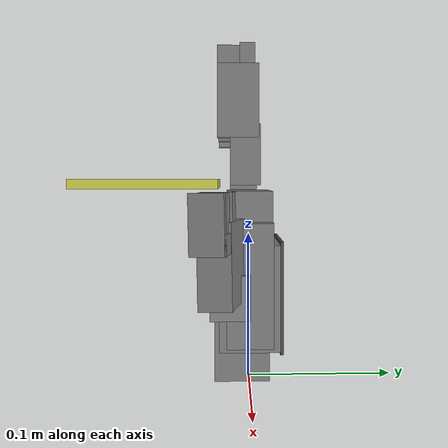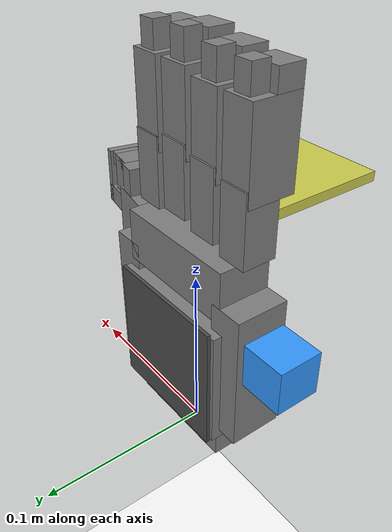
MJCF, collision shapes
<mujoco model="v2_scene_grasp">
  <size nconmax="80"/>
  <include file="right_hand_v2_vertical.xml"/>
  <include file="small_cube.xml"/>

  <!-- V2 手更长 (指尖世界 X ≈ -0.22)，调整视角中心 -->
  <statistic center="-0.130 0 0.005" extent="0.5" meansize="0.01"/>

  <visual>
    <headlight diffuse=".8 .8 .8" ambient=".2 .2 .2" specular="1 1 1"/>
    <rgba force="1 0 0 1"/>
    <global azimuth="120" elevation="-20"/>
  </visual>

  <asset>
    <texture type="skybox" builtin="gradient" rgb1="1 1 1" rgb2="1 1 1" width="800" height="800"/>
    <texture type="2d" name="groundplane" builtin="checker" mark="edge" rgb1="1 1 1" rgb2="1 1 1" markrgb="0 0 0" width="300" height="300"/>
    <material name="groundplane" texture="groundplane" texuniform="true" texrepeat="5 5" reflectance="0"/>
  </asset>

  <worldbody>
    <camera name="side" pos="-0.314 -0.181 0.249" xyaxes="0.5 -0.866 0 0.366 0.211 0.906"/>
    <camera name="palm" pos="-0.376 0.0 0.217" xyaxes="0 -1 0 0.342 0 0.940"/>
    <geom name="floor" pos="0 0 -0.25" size="0 0 0.01" type="plane" material="groundplane" contype="2" conaffinity="2"/>
    <!-- 支撑台: cube_z(0.1503) - cube_half(0.0125) - support_half(0.003) = 0.1348
         支撑台只与 cube 碰撞；不与手指/手掌碰撞，避免从初始手形中顶开手指。 -->
    <body name="cube_support" mocap="true" pos="0.025 -0.065 0.1348">
      <geom name="cube_support_geom" type="box" size="0.045 0.045 0.003" rgba="0.8 0.8 0.3 0.3" contype="4" conaffinity="0"/>
    </body>
  </worldbody>

  <sensor>
    <framepos name="cube_position" objtype="body" objname="cube"/>
    <framequat name="cube_orientation" objtype="body" objname="cube"/>
    <framelinvel name="cube_linvel" objtype="body" objname="cube"/>
    <frameangvel name="cube_angvel" objtype="body" objname="cube"/>

    <framepos name="palm_position" objtype="site" objname="grasp_site"/>
    <framepos name="th_tip_position" objtype="site" objname="th_tip" reftype="site" refname="grasp_site"/>
    <framepos name="if_tip_position" objtype="site" objname="if_tip" reftype="site" refname="grasp_site"/>
    <framepos name="mf_tip_position" objtype="site" objname="mf_tip" reftype="site" refname="grasp_site"/>
    <framepos name="rf_tip_position" objtype="site" objname="rf_tip" reftype="site" refname="grasp_site"/>
    <framepos name="pf_tip_position" objtype="site" objname="pf_tip" reftype="site" refname="grasp_site"/>
  </sensor>

  <keyframe>
    <key name="home" qpos="0.55 0.50875 0.55 0.50875
    1.3963 1.2916 1.3963 1.2916
    1.38 0.2208 0.0
    0.025 -0.065 0.1503 1 0 0 0" ctrl="
    1.38
    0.0
    0.55
    0.55
    1.4
    1.4" mpos="0.025 -0.065 0.1348" mquat="1 0 0 0"/>
  </keyframe>
</mujoco>

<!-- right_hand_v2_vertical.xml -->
<mujoco model="Lingxi_Hand_V2_Right">
  <compiler angle="radian" meshdir="/home/ll/SRTP/Aero-Hand/handinformation/URDF/右/qbr/meshes/"/>

  <option timestep="0.01" integrator="Euler" iterations="12" ls_iterations="16">
    <flag eulerdamp="disable"/>
  </option>

  <custom>
    <numeric data="80" name="max_contact_points"/>
    <numeric data="50" name="max_geom_pairs"/>
  </custom>

  <asset>
    <material name="black" rgba="0.2 0.2 0.2 1"/>
    <material name="gray" rgba="0.5 0.5 0.5 1"/>
    <material name="white" rgba="0.529 0.549 0.549 1"/>
    <material name="rubber" rgba="0.3 0.3 0.3 1"/>

    <!-- V2 STL 网格 (v2_base_link.STL avoids name collision with V1 menagerie assets) -->
    <mesh name="v2_palm" file="v2_base_link.STL"/>
    <mesh name="v2_thumb_base" file="link1.STL"/>
    <mesh name="v2_thumb_mid" file="link2.STL"/>
    <mesh name="v2_thumb_tip" file="link3.STL"/>
    <mesh name="v2_index_proximal" file="link4.STL"/>
    <mesh name="v2_index_distal" file="link5.STL"/>
    <mesh name="v2_middle_proximal" file="link6.STL"/>
    <mesh name="v2_middle_distal" file="link7.STL"/>
    <mesh name="v2_ring_proximal" file="link8.STL"/>
    <mesh name="v2_ring_distal" file="link9.STL"/>
    <mesh name="v2_pinky_proximal" file="link10.STL"/>
    <mesh name="v2_pinky_distal" file="link11.STL"/>
  </asset>

  <default>
    <default class="v2_hand">
      <!-- 碰撞默认：friction=1.5, 柔性接触 -->
      <geom group="3" friction="1.5" solref="0.01 1.2" solimp="0.95 0.995 0.0005"/>
      <!-- 默认 site 隐藏到 group 4，viewer 中不显示触觉传感器小球 -->
      <site group="4"/>
      <default class="visual">
        <geom group="2" type="mesh" contype="0" conaffinity="0" density="0" material="white"/>
      </default>

      <!-- 关节物理默认 -->
      <!-- armature = rotor_inertia * gear_ratio^2 = 0.371e-7 * 205^2 -->
      <joint damping="0.02" armature="0.001559127" frictionloss="0.02"/>
      <position kp="3.0"/>

      <!-- ========== 关节范围 (V2 硬件实测) ========== -->
      <!-- MCP (根→近端): 80° = 1.3963 rad -->
      <default class="mcp">
        <joint range="0 1.3963" damping="0.1"/>
        <position ctrlrange="0 1.40"/>
      </default>
      <!-- PIP (被动耦合): 74° = 1.2915 rad -->
      <default class="pip">
        <joint range="0 1.2915" damping="0.05"/>
      </default>
      <!-- 拇指 CMC 外展: 79° = 1.3788 rad -->
      <default class="thumb_cmc">
        <joint range="0 1.3788" damping="0.1"/>
        <position ctrlrange="0 1.38"/>
      </default>
      <!-- 拇指 CMC 弯曲 (被动): 30° = 0.5236 rad -->
      <default class="thumb_flex">
        <joint range="0 0.5236" damping="0.05"/>
      </default>
      <!-- 拇指 MCP/IP: 45° = 0.7854 rad -->
      <default class="thumb_mcp">
        <joint range="0 0.7854" damping="0.05"/>
        <position ctrlrange="0 0.79"/>
      </default>
    </default>
  </default>

  <!-- 自碰撞排除 -->
  <contact>
    <exclude body1="palm" body2="right_index_proximal"/>
    <exclude body1="palm" body2="right_middle_proximal"/>
    <exclude body1="palm" body2="right_ring_proximal"/>
    <exclude body1="palm" body2="right_pinky_proximal"/>
    <exclude body1="palm" body2="right_thumb_base"/>
    <exclude body1="palm" body2="right_thumb_mid"/>
    <exclude body1="palm" body2="right_ring_distal"/>
    <exclude body1="palm" body2="right_pinky_distal"/>
    <exclude body1="v2_mount" body2="right_index_proximal"/>
    <exclude body1="v2_mount" body2="right_middle_proximal"/>
    <exclude body1="v2_mount" body2="right_ring_proximal"/>
    <exclude body1="v2_mount" body2="right_pinky_proximal"/>
    <exclude body1="v2_mount" body2="right_thumb_base"/>
    <exclude body1="right_index_proximal" body2="right_index_distal"/>
    <exclude body1="right_middle_proximal" body2="right_middle_distal"/>
    <exclude body1="right_ring_proximal" body2="right_ring_distal"/>
    <exclude body1="right_pinky_proximal" body2="right_pinky_distal"/>
    <exclude body1="right_thumb_base" body2="right_thumb_mid"/>
    <exclude body1="right_thumb_mid" body2="right_thumb_tip"/>
    <!-- 相邻手指互排除 (碰撞盒放大后避免不必要碰撞对) -->
    <exclude body1="right_index_proximal" body2="right_middle_proximal"/>
    <exclude body1="right_index_distal" body2="right_middle_distal"/>
    <exclude body1="right_middle_proximal" body2="right_ring_proximal"/>
    <exclude body1="right_middle_distal" body2="right_ring_distal"/>
    <exclude body1="right_ring_proximal" body2="right_pinky_proximal"/>
    <exclude body1="right_ring_distal" body2="right_pinky_distal"/>
    <exclude body1="right_index_proximal" body2="right_middle_distal"/>
    <exclude body1="right_middle_proximal" body2="right_ring_distal"/>
    <exclude body1="right_ring_proximal" body2="right_pinky_distal"/>
    <exclude body1="right_middle_proximal" body2="right_index_distal"/>
    <exclude body1="right_ring_proximal" body2="right_middle_distal"/>
    <exclude body1="right_pinky_proximal" body2="right_ring_distal"/>
  </contact>

  <worldbody>
    <!-- 挂载体：URDF→世界坐标旋转
         euler="1.5708 0 1.5708" = Rx(90°)*Rz(90°)
         URDF X(侧向)→世界 Z, URDF Y(手指)→世界 -X, URDF Z(掌深)→世界 -Y -->
    <body name="v2_mount" pos="0 0 0" euler="1.5708 0 0" childclass="v2_hand">
      <body name="palm" pos="0 0 0">
        <!-- 视觉: V2 手掌网格 -->
        <geom type="mesh" mesh="v2_palm" class="visual"/>

        <!-- 手掌碰撞几何 (96.2×94.9×46.2mm 外壳简化) -->
        <geom name="palm_col_main" type="box" size="0.040 0.035 0.020" pos="0 0.060 0"/>
        <geom name="palm_col_top" type="box" size="0.038 0.015 0.015" pos="0 0.115 0"/>
        <geom name="palm_col_bot" type="box" size="0.035 0.020 0.018" pos="0 0.025 0.005"/>
        <geom name="palm_col_left" type="box" size="0.010 0.040 0.015" pos="0.042 0.070 0"/>
        <geom name="palm_col_right" type="box" size="0.010 0.040 0.015" pos="-0.042 0.070 0"/>
        <!-- 掌心软胶碰撞 (76.27×73.5×1mm TPE，高摩擦) -->
        <geom name="palm_rubber" type="box" size="0.038 0.037 0.001" pos="0 0.060 -0.021"
              friction="2.0 0.05 0.0002" material="rubber"/>

        <!-- 抓取参考位点 (掌面中心附近) -->
        <site name="grasp_site" pos="0 0.085 -0.020" group="4"/>

        <!-- ==================== 食指 INDEX ==================== -->
        <!-- 从 URDF j4: xyz="0.034276 0.1374 0.001" -->
        <body name="right_index_proximal" pos="0.034276 0.1374 0.001">
          <inertial pos="-0.003657 0.0162 0.000274" mass="0.0686"
                    diaginertia="7.49e-06 7.33e-06 2.82e-06"/>
          <joint name="right_index_mcp" axis="1 0 0" class="mcp"/>
          <geom type="mesh" mesh="v2_index_proximal" class="visual"/>
          <geom name="if_prox_col" type="box" size="0.0086 0.0196 0.0097" pos="-0.0037 0.0162 0.0019"/>

          <!-- 从 URDF j5: xyz="0.00084336 0.031988 -0.0026473" -->
          <body name="right_index_distal" pos="0.00084336 0.031988 -0.0026473">
            <inertial pos="-0.00450 0.0246 0.00927" mass="0.0755"
                      diaginertia="1.58e-05 1.57e-05 2.47e-06"/>
            <joint name="right_index_pip" axis="1 0 0" class="pip"/>
            <geom type="mesh" mesh="v2_index_distal" class="visual"/>
            <geom name="if_dist_col" type="box" size="0.0089 0.0235 0.0134" pos="-0.0045 0.0188 0.0091"/>
            <geom name="if_tip_col" type="box" size="0.005 0.008 0.005" pos="-0.004 0.048 0.003"/>
            <geom name="if_tip_back_col" type="box" size="0.0089 0.0065 0.0072" pos="-0.0045 0.0470 0.0153"/>
            <site name="if_tip" pos="-0.004 0.052 0.005" group="4"/>
            <!-- 食指 4x4 触觉阵列 (16 taxels) -->
            <site name="if_tip_t00" pos="-0.007 0.042 0.005" size="0.003"/>
            <site name="if_tip_t01" pos="-0.005 0.042 0.005" size="0.003"/>
            <site name="if_tip_t02" pos="-0.003 0.042 0.005" size="0.003"/>
            <site name="if_tip_t03" pos="-0.001 0.042 0.005" size="0.003"/>
            <site name="if_tip_t04" pos="-0.007 0.045 0.005" size="0.003"/>
            <site name="if_tip_t05" pos="-0.005 0.045 0.005" size="0.003"/>
            <site name="if_tip_t06" pos="-0.003 0.045 0.005" size="0.003"/>
            <site name="if_tip_t07" pos="-0.001 0.045 0.005" size="0.003"/>
            <site name="if_tip_t08" pos="-0.007 0.048 0.005" size="0.003"/>
            <site name="if_tip_t09" pos="-0.005 0.048 0.005" size="0.003"/>
            <site name="if_tip_t10" pos="-0.003 0.048 0.005" size="0.003"/>
            <site name="if_tip_t11" pos="-0.001 0.048 0.005" size="0.003"/>
            <site name="if_tip_t12" pos="-0.007 0.051 0.005" size="0.003"/>
            <site name="if_tip_t13" pos="-0.005 0.051 0.005" size="0.003"/>
            <site name="if_tip_t14" pos="-0.003 0.051 0.005" size="0.003"/>
            <site name="if_tip_t15" pos="-0.001 0.051 0.005" size="0.003"/>
          </body>
        </body>

        <!-- ==================== 中指 MIDDLE ==================== -->
        <!-- 从 URDF j6: xyz="0.012276 0.14055 0.001" -->
        <body name="right_middle_proximal" pos="0.012276 0.14055 0.001">
          <inertial pos="-0.003657 0.0162 0.000274" mass="0.0686"
                    diaginertia="7.49e-06 7.33e-06 2.82e-06"/>
          <joint name="right_middle_mcp" axis="1 0 0" class="mcp"/>
          <geom type="mesh" mesh="v2_middle_proximal" class="visual"/>
          <geom name="mf_prox_col" type="box" size="0.0086 0.0196 0.0097" pos="-0.0037 0.0162 0.0019"/>

          <!-- 从 URDF j7: xyz="0 0.02968 -0.0024563" -->
          <body name="right_middle_distal" pos="0 0.02968 -0.0024563">
            <inertial pos="-0.00366 0.0269 0.00908" mass="0.0755"
                      diaginertia="1.58e-05 1.57e-05 2.47e-06"/>
            <joint name="right_middle_pip" axis="1 0 0" class="pip"/>
            <geom type="mesh" mesh="v2_middle_distal" class="visual"/>
            <geom name="mf_dist_col" type="box" size="0.0089 0.0220 0.0133" pos="-0.0037 0.0195 0.0090"/>
            <geom name="mf_tip_col" type="box" size="0.005 0.008 0.005" pos="-0.004 0.048 0.003"/>
            <geom name="mf_tip_back_col" type="box" size="0.0089 0.0070 0.0072" pos="-0.0037 0.0480 0.0152"/>
            <site name="mf_tip" pos="-0.004 0.052 0.005" group="4"/>
            <!-- 中指 4x4 触觉阵列 -->
            <site name="mf_tip_t00" pos="-0.007 0.042 0.005" size="0.003"/>
            <site name="mf_tip_t01" pos="-0.005 0.042 0.005" size="0.003"/>
            <site name="mf_tip_t02" pos="-0.003 0.042 0.005" size="0.003"/>
            <site name="mf_tip_t03" pos="-0.001 0.042 0.005" size="0.003"/>
            <site name="mf_tip_t04" pos="-0.007 0.045 0.005" size="0.003"/>
            <site name="mf_tip_t05" pos="-0.005 0.045 0.005" size="0.003"/>
            <site name="mf_tip_t06" pos="-0.003 0.045 0.005" size="0.003"/>
            <site name="mf_tip_t07" pos="-0.001 0.045 0.005" size="0.003"/>
            <site name="mf_tip_t08" pos="-0.007 0.048 0.005" size="0.003"/>
            <site name="mf_tip_t09" pos="-0.005 0.048 0.005" size="0.003"/>
            <site name="mf_tip_t10" pos="-0.003 0.048 0.005" size="0.003"/>
            <site name="mf_tip_t11" pos="-0.001 0.048 0.005" size="0.003"/>
            <site name="mf_tip_t12" pos="-0.007 0.051 0.005" size="0.003"/>
            <site name="mf_tip_t13" pos="-0.005 0.051 0.005" size="0.003"/>
            <site name="mf_tip_t14" pos="-0.003 0.051 0.005" size="0.003"/>
            <site name="mf_tip_t15" pos="-0.001 0.051 0.005" size="0.003"/>
          </body>
        </body>

        <!-- ==================== 无名指 RING ==================== -->
        <!-- 从 URDF j8: xyz="-0.009724 0.1374 0.001" -->
        <body name="right_ring_proximal" pos="-0.009724 0.1374 0.001">
          <inertial pos="-0.003657 0.0162 0.000274" mass="0.0686"
                    diaginertia="7.49e-06 7.33e-06 2.82e-06"/>
          <joint name="right_ring_mcp" axis="1 0 0" class="mcp"/>
          <geom type="mesh" mesh="v2_ring_proximal" class="visual"/>
          <geom name="rf_prox_col" type="box" size="0.0086 0.0196 0.0097" pos="-0.0037 0.0162 0.0019"/>

          <!-- 从 URDF j9: xyz="0 0.02968 -0.0024563" -->
          <body name="right_ring_distal" pos="0 0.02968 -0.0024563">
            <inertial pos="-0.00366 0.0269 0.00908" mass="0.0755"
                      diaginertia="1.58e-05 1.57e-05 2.47e-06"/>
            <joint name="right_ring_pip" axis="1 0 0" class="pip"/>
            <geom type="mesh" mesh="v2_ring_distal" class="visual"/>
            <geom name="rf_dist_col" type="box" size="0.0089 0.0220 0.0133" pos="-0.0037 0.0195 0.0090"/>
            <geom name="rf_tip_col" type="box" size="0.005 0.008 0.005" pos="-0.004 0.048 0.003"/>
            <geom name="rf_tip_back_col" type="box" size="0.0089 0.0070 0.0072" pos="-0.0037 0.0480 0.0152"/>
            <site name="rf_tip" pos="-0.004 0.052 0.005" group="4"/>
            <!-- 无名指 4x4 触觉阵列 -->
            <site name="rf_tip_t00" pos="-0.007 0.042 0.005" size="0.003"/>
            <site name="rf_tip_t01" pos="-0.005 0.042 0.005" size="0.003"/>
            <site name="rf_tip_t02" pos="-0.003 0.042 0.005" size="0.003"/>
            <site name="rf_tip_t03" pos="-0.001 0.042 0.005" size="0.003"/>
            <site name="rf_tip_t04" pos="-0.007 0.045 0.005" size="0.003"/>
            <site name="rf_tip_t05" pos="-0.005 0.045 0.005" size="0.003"/>
            <site name="rf_tip_t06" pos="-0.003 0.045 0.005" size="0.003"/>
            <site name="rf_tip_t07" pos="-0.001 0.045 0.005" size="0.003"/>
            <site name="rf_tip_t08" pos="-0.007 0.048 0.005" size="0.003"/>
            <site name="rf_tip_t09" pos="-0.005 0.048 0.005" size="0.003"/>
            <site name="rf_tip_t10" pos="-0.003 0.048 0.005" size="0.003"/>
            <site name="rf_tip_t11" pos="-0.001 0.048 0.005" size="0.003"/>
            <site name="rf_tip_t12" pos="-0.007 0.051 0.005" size="0.003"/>
            <site name="rf_tip_t13" pos="-0.005 0.051 0.005" size="0.003"/>
            <site name="rf_tip_t14" pos="-0.003 0.051 0.005" size="0.003"/>
            <site name="rf_tip_t15" pos="-0.001 0.051 0.005" size="0.003"/>
          </body>
        </body>

        <!-- ==================== 小指 PINKY ==================== -->
        <!-- 从 URDF j10: xyz="-0.031724 0.13417 0.001" (比食指低 3.23mm) -->
        <body name="right_pinky_proximal" pos="-0.031724 0.13417 0.001">
          <inertial pos="-0.003657 0.0162 0.000274" mass="0.0686"
                    diaginertia="7.49e-06 7.33e-06 2.82e-06"/>
          <joint name="right_pinky_mcp" axis="1 0 0" class="mcp"/>
          <geom type="mesh" mesh="v2_pinky_proximal" class="visual"/>
          <geom name="pf_prox_col" type="box" size="0.0086 0.0196 0.0097" pos="-0.0037 0.0162 0.0019"/>

          <!-- 从 URDF j11: xyz="0.00084336 0.031988 -0.0026473" -->
          <body name="right_pinky_distal" pos="0.00084336 0.031988 -0.0026473">
            <inertial pos="-0.00450 0.0246 0.00927" mass="0.0755"
                      diaginertia="1.58e-05 1.57e-05 2.47e-06"/>
            <joint name="right_pinky_pip" axis="1 0 0" class="pip"/>
            <geom type="mesh" mesh="v2_pinky_distal" class="visual"/>
            <geom name="pf_dist_col" type="box" size="0.0089 0.0235 0.0134" pos="-0.0045 0.0188 0.0091"/>
            <geom name="pf_tip_col" type="box" size="0.005 0.008 0.005" pos="-0.004 0.048 0.003"/>
            <geom name="pf_tip_back_col" type="box" size="0.0089 0.0065 0.0072" pos="-0.0045 0.0470 0.0153"/>
            <site name="pf_tip" pos="-0.004 0.052 0.005" group="4"/>
            <!-- 小指 4x4 触觉阵列 -->
            <site name="pf_tip_t00" pos="-0.007 0.042 0.005" size="0.003"/>
            <site name="pf_tip_t01" pos="-0.005 0.042 0.005" size="0.003"/>
            <site name="pf_tip_t02" pos="-0.003 0.042 0.005" size="0.003"/>
            <site name="pf_tip_t03" pos="-0.001 0.042 0.005" size="0.003"/>
            <site name="pf_tip_t04" pos="-0.007 0.045 0.005" size="0.003"/>
            <site name="pf_tip_t05" pos="-0.005 0.045 0.005" size="0.003"/>
            <site name="pf_tip_t06" pos="-0.003 0.045 0.005" size="0.003"/>
            <site name="pf_tip_t07" pos="-0.001 0.045 0.005" size="0.003"/>
            <site name="pf_tip_t08" pos="-0.007 0.048 0.005" size="0.003"/>
            <site name="pf_tip_t09" pos="-0.005 0.048 0.005" size="0.003"/>
            <site name="pf_tip_t10" pos="-0.003 0.048 0.005" size="0.003"/>
            <site name="pf_tip_t11" pos="-0.001 0.048 0.005" size="0.003"/>
            <site name="pf_tip_t12" pos="-0.007 0.051 0.005" size="0.003"/>
            <site name="pf_tip_t13" pos="-0.005 0.051 0.005" size="0.003"/>
            <site name="pf_tip_t14" pos="-0.003 0.051 0.005" size="0.003"/>
            <site name="pf_tip_t15" pos="-0.001 0.051 0.005" size="0.003"/>
          </body>
        </body>

        <!-- ==================== 拇指 THUMB ==================== -->
        <!-- 从 URDF j1: xyz="0.028693 0.069894 0.010325" quat(MJ)="0.999048 0 0 0.043619"
             axis=Y (URDF), 翻转→ axis="0 -1 0" range="0 1.3788" (79°) -->
        <body name="right_thumb_base" pos="0.028693 0.069894 0.010325"
              quat="0.999048 0 0 0.043619">
          <inertial pos="0.013775 -0.009814 0.002084" mass="0.08488"
                    diaginertia="1.03e-05 9.49e-06 5.67e-06"/>
          <joint name="right_thumb_cmc_abd" axis="0 -1 0" class="thumb_cmc"/>
          <geom type="mesh" mesh="v2_thumb_base" class="visual"/>
          <geom name="th_base_col" type="box" size="0.0218 0.0140 0.0126" pos="0.0128 -0.0084 0.0024"/>

          <body name="right_thumb_mid" pos="0.02679 -0.0045 0.0045976"
                quat="0.641137 -0.027549 -0.766225 -0.032924">
            <inertial pos="0 0.01832 -0.01287" mass="0.18907"
                      diaginertia="4.62e-05 4.25e-05 1.60e-05"/>
            <joint name="right_thumb_cmc_flex" axis="1 0 0" class="thumb_flex"/>
            <geom type="mesh" mesh="v2_thumb_mid" class="visual"/>
            <geom name="th_mid_col" type="box" size="0.0102 0.0257 0.0234" pos="0 0.0194 -0.0137"/>

            <!-- 从 URDF j3: xyz="0.0055478 0.0413 -0.024172"
                 axis=X, range=[0, 0.7854] (45°) -->
            <body name="right_thumb_tip" pos="0.0055478 0.0413 -0.024172">
              <inertial pos="-0.005551 0.005391 -0.014448" mass="0.07660"
                        diaginertia="8.30e-06 8.00e-06 4.06e-06"/>
              <joint name="right_thumb_mcp" axis="1 0 0" class="thumb_mcp"/>
              <geom type="mesh" mesh="v2_thumb_tip" class="visual"/>
              <geom name="th_tip_col_1" type="box" size="0.008 0.0115 0.008" pos="-0.006 0.0095 -0.015"/>
              <geom name="th_tip_col_2" type="box" size="0.008 0.004 0.008" pos="-0.006 0.017 -0.020"/>
              <geom name="th_tip_back_col" type="box" size="0.0101 0.0175 0.0053" pos="-0.0055 0.0036 -0.0018"/>
              <geom name="th_tip_root_col" type="box" size="0.0101 0.0060 0.0128" pos="-0.0055 -0.0080 -0.0195"/>
              <geom name="th_tip_deep_col" type="box" size="0.0101 0.0175 0.0025" pos="-0.0055 0.0036 -0.0300"/>
              <site name="th_tip" pos="-0.006 0.021 -0.020" group="4"/>
              <!-- 拇指 4x4 触觉阵列 -->
              <site name="th_tip_t00" pos="-0.010 0.008 -0.020" size="0.003"/>
              <site name="th_tip_t01" pos="-0.007 0.008 -0.020" size="0.003"/>
              <site name="th_tip_t02" pos="-0.004 0.008 -0.020" size="0.003"/>
              <site name="th_tip_t03" pos="-0.001 0.008 -0.020" size="0.003"/>
              <site name="th_tip_t04" pos="-0.010 0.012 -0.020" size="0.003"/>
              <site name="th_tip_t05" pos="-0.007 0.012 -0.020" size="0.003"/>
              <site name="th_tip_t06" pos="-0.004 0.012 -0.020" size="0.003"/>
              <site name="th_tip_t07" pos="-0.001 0.012 -0.020" size="0.003"/>
              <site name="th_tip_t08" pos="-0.010 0.016 -0.020" size="0.003"/>
              <site name="th_tip_t09" pos="-0.007 0.016 -0.020" size="0.003"/>
              <site name="th_tip_t10" pos="-0.004 0.016 -0.020" size="0.003"/>
              <site name="th_tip_t11" pos="-0.001 0.016 -0.020" size="0.003"/>
              <site name="th_tip_t12" pos="-0.010 0.020 -0.020" size="0.003"/>
              <site name="th_tip_t13" pos="-0.007 0.020 -0.020" size="0.003"/>
              <site name="th_tip_t14" pos="-0.004 0.020 -0.020" size="0.003"/>
              <site name="th_tip_t15" pos="-0.001 0.020 -0.020" size="0.003"/>
            </body>
          </body>
        </body>
      </body>
    </body>
  </worldbody>

  <!-- ==================== 执行器 (6 通道) ==================== -->
  <!-- 直接关节位置控制，保持与 V1 相同的 6 通道顺序:
       [thumb_rot, thumb_flex, index, middle, ring, pinky] -->
  <actuator>
    <position name="hw_thumb_rot" joint="right_thumb_cmc_abd" class="thumb_cmc" kp="5"/>
    <position name="hw_thumb_flex" joint="right_thumb_mcp" class="thumb_mcp" kp="3"/>
    <position name="hw_index" joint="right_index_mcp" class="mcp" kp="3"/>
    <position name="hw_middle" joint="right_middle_mcp" class="mcp" kp="3"/>
    <position name="hw_ring" joint="right_ring_mcp" class="mcp" kp="3"/>
    <position name="hw_pinky" joint="right_pinky_mcp" class="mcp" kp="3"/>
  </actuator>

  <!-- ==================== 传感器 ==================== -->
  <sensor>
    <!-- 6 路关节位置 -->
    <jointpos name="hw_pos_thumb_rot" joint="right_thumb_cmc_abd"/>
    <jointpos name="hw_pos_thumb_flex" joint="right_thumb_mcp"/>
    <jointpos name="hw_pos_index" joint="right_index_mcp"/>
    <jointpos name="hw_pos_middle" joint="right_middle_mcp"/>
    <jointpos name="hw_pos_ring" joint="right_ring_mcp"/>
    <jointpos name="hw_pos_pinky" joint="right_pinky_mcp"/>

    <!-- 5×16 = 80 路触觉传感器 -->
    <touch name="hw_tip_frc_thumb_00" site="th_tip_t00"/>
    <touch name="hw_tip_frc_thumb_01" site="th_tip_t01"/>
    <touch name="hw_tip_frc_thumb_02" site="th_tip_t02"/>
    <touch name="hw_tip_frc_thumb_03" site="th_tip_t03"/>
    <touch name="hw_tip_frc_thumb_04" site="th_tip_t04"/>
    <touch name="hw_tip_frc_thumb_05" site="th_tip_t05"/>
    <touch name="hw_tip_frc_thumb_06" site="th_tip_t06"/>
    <touch name="hw_tip_frc_thumb_07" site="th_tip_t07"/>
    <touch name="hw_tip_frc_thumb_08" site="th_tip_t08"/>
    <touch name="hw_tip_frc_thumb_09" site="th_tip_t09"/>
    <touch name="hw_tip_frc_thumb_10" site="th_tip_t10"/>
    <touch name="hw_tip_frc_thumb_11" site="th_tip_t11"/>
    <touch name="hw_tip_frc_thumb_12" site="th_tip_t12"/>
    <touch name="hw_tip_frc_thumb_13" site="th_tip_t13"/>
    <touch name="hw_tip_frc_thumb_14" site="th_tip_t14"/>
    <touch name="hw_tip_frc_thumb_15" site="th_tip_t15"/>

    <touch name="hw_tip_frc_index_00" site="if_tip_t00"/>
    <touch name="hw_tip_frc_index_01" site="if_tip_t01"/>
    <touch name="hw_tip_frc_index_02" site="if_tip_t02"/>
    <touch name="hw_tip_frc_index_03" site="if_tip_t03"/>
    <touch name="hw_tip_frc_index_04" site="if_tip_t04"/>
    <touch name="hw_tip_frc_index_05" site="if_tip_t05"/>
    <touch name="hw_tip_frc_index_06" site="if_tip_t06"/>
    <touch name="hw_tip_frc_index_07" site="if_tip_t07"/>
    <touch name="hw_tip_frc_index_08" site="if_tip_t08"/>
    <touch name="hw_tip_frc_index_09" site="if_tip_t09"/>
    <touch name="hw_tip_frc_index_10" site="if_tip_t10"/>
    <touch name="hw_tip_frc_index_11" site="if_tip_t11"/>
    <touch name="hw_tip_frc_index_12" site="if_tip_t12"/>
    <touch name="hw_tip_frc_index_13" site="if_tip_t13"/>
    <touch name="hw_tip_frc_index_14" site="if_tip_t14"/>
    <touch name="hw_tip_frc_index_15" site="if_tip_t15"/>

    <touch name="hw_tip_frc_middle_00" site="mf_tip_t00"/>
    <touch name="hw_tip_frc_middle_01" site="mf_tip_t01"/>
    <touch name="hw_tip_frc_middle_02" site="mf_tip_t02"/>
    <touch name="hw_tip_frc_middle_03" site="mf_tip_t03"/>
    <touch name="hw_tip_frc_middle_04" site="mf_tip_t04"/>
    <touch name="hw_tip_frc_middle_05" site="mf_tip_t05"/>
    <touch name="hw_tip_frc_middle_06" site="mf_tip_t06"/>
    <touch name="hw_tip_frc_middle_07" site="mf_tip_t07"/>
    <touch name="hw_tip_frc_middle_08" site="mf_tip_t08"/>
    <touch name="hw_tip_frc_middle_09" site="mf_tip_t09"/>
    <touch name="hw_tip_frc_middle_10" site="mf_tip_t10"/>
    <touch name="hw_tip_frc_middle_11" site="mf_tip_t11"/>
    <touch name="hw_tip_frc_middle_12" site="mf_tip_t12"/>
    <touch name="hw_tip_frc_middle_13" site="mf_tip_t13"/>
    <touch name="hw_tip_frc_middle_14" site="mf_tip_t14"/>
    <touch name="hw_tip_frc_middle_15" site="mf_tip_t15"/>

    <touch name="hw_tip_frc_ring_00" site="rf_tip_t00"/>
    <touch name="hw_tip_frc_ring_01" site="rf_tip_t01"/>
    <touch name="hw_tip_frc_ring_02" site="rf_tip_t02"/>
    <touch name="hw_tip_frc_ring_03" site="rf_tip_t03"/>
    <touch name="hw_tip_frc_ring_04" site="rf_tip_t04"/>
    <touch name="hw_tip_frc_ring_05" site="rf_tip_t05"/>
    <touch name="hw_tip_frc_ring_06" site="rf_tip_t06"/>
    <touch name="hw_tip_frc_ring_07" site="rf_tip_t07"/>
    <touch name="hw_tip_frc_ring_08" site="rf_tip_t08"/>
    <touch name="hw_tip_frc_ring_09" site="rf_tip_t09"/>
    <touch name="hw_tip_frc_ring_10" site="rf_tip_t10"/>
    <touch name="hw_tip_frc_ring_11" site="rf_tip_t11"/>
    <touch name="hw_tip_frc_ring_12" site="rf_tip_t12"/>
    <touch name="hw_tip_frc_ring_13" site="rf_tip_t13"/>
    <touch name="hw_tip_frc_ring_14" site="rf_tip_t14"/>
    <touch name="hw_tip_frc_ring_15" site="rf_tip_t15"/>

    <touch name="hw_tip_frc_pinky_00" site="pf_tip_t00"/>
    <touch name="hw_tip_frc_pinky_01" site="pf_tip_t01"/>
    <touch name="hw_tip_frc_pinky_02" site="pf_tip_t02"/>
    <touch name="hw_tip_frc_pinky_03" site="pf_tip_t03"/>
    <touch name="hw_tip_frc_pinky_04" site="pf_tip_t04"/>
    <touch name="hw_tip_frc_pinky_05" site="pf_tip_t05"/>
    <touch name="hw_tip_frc_pinky_06" site="pf_tip_t06"/>
    <touch name="hw_tip_frc_pinky_07" site="pf_tip_t07"/>
    <touch name="hw_tip_frc_pinky_08" site="pf_tip_t08"/>
    <touch name="hw_tip_frc_pinky_09" site="pf_tip_t09"/>
    <touch name="hw_tip_frc_pinky_10" site="pf_tip_t10"/>
    <touch name="hw_tip_frc_pinky_11" site="pf_tip_t11"/>
    <touch name="hw_tip_frc_pinky_12" site="pf_tip_t12"/>
    <touch name="hw_tip_frc_pinky_13" site="pf_tip_t13"/>
    <touch name="hw_tip_frc_pinky_14" site="pf_tip_t14"/>
    <touch name="hw_tip_frc_pinky_15" site="pf_tip_t15"/>
  </sensor>

  <!-- ==================== 等式约束 (被动关节耦合) ==================== -->
  <equality>
    <!-- 四指 PIP 被动耦合到 MCP: pip ≈ 0.925 * mcp
         当 MCP=80° 时, PIP=74° (匹配硬件) -->
    <joint joint1="right_index_pip" joint2="right_index_mcp"
           polycoef="0 0.925 0 0 0" solref="0.005 1" solimp="0.95 0.99 0.001"/>
    <joint joint1="right_middle_pip" joint2="right_middle_mcp"
           polycoef="0 0.925 0 0 0" solref="0.005 1" solimp="0.95 0.99 0.001"/>
    <joint joint1="right_ring_pip" joint2="right_ring_mcp"
           polycoef="0 0.925 0 0 0" solref="0.005 1" solimp="0.95 0.99 0.001"/>
    <joint joint1="right_pinky_pip" joint2="right_pinky_mcp"
           polycoef="0 0.925 0 0 0" solref="0.005 1" solimp="0.95 0.99 0.001"/>
    <!-- 拇指 CMC flex 被动耦合到 CMC abd: flex ≈ 0.16 * abd
         R86: 从0.38降到0.16 — 指尖距离从29.6mm降到10.8mm -->
    <joint joint1="right_thumb_cmc_flex" joint2="right_thumb_cmc_abd"
           polycoef="0 0.16 0 0 0" solref="0.005 1" solimp="0.95 0.99 0.001"/>
  </equality>

</mujoco>

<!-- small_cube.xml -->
<mujoco>
  <!-- ================================================================
       物块参数文件（P-stage 和 V-stage 共用）
       ================================================================ -->
  <default>
    <default class="cube">
      <!-- C14: friction 2.0→1.5 (moderate), mass 20g→10g (easier hold) -->
      <!-- C20穿模修复: 添加solref/solimp使方块接触更硬 -->
      <geom friction="1.5 0.05" conaffinity="7" condim="3" solref="0.005 1.0" solimp="0.97 0.999 0.0001"/>
    </default>
  </default>

  <worldbody>
    <!-- 【物块 body】
         pos：默认初始位置（被 keyframe 或 Python config 中 cube_pos 覆盖，此值不生效）
         quat：初始姿态，1 0 0 0 = 无旋转 -->
    <body name="cube" pos="-0.066 0.0 0.085" quat="1 0 0 0" childclass="cube">
      <!-- freejoint：使物块有 6-DOF 自由运动（位置+姿态，共 7 qpos）-->
      <freejoint name="cube_freejoint"/>
      <geom name="cube" type="box" size=".0125 .0125 .0125" mass=".020" group="1" rgba="0.2 0.6 1.0 1"/>
      <site name="cube_center" pos="0 0 0" group="4"/>
    </body>
  </worldbody>
</mujoco>
